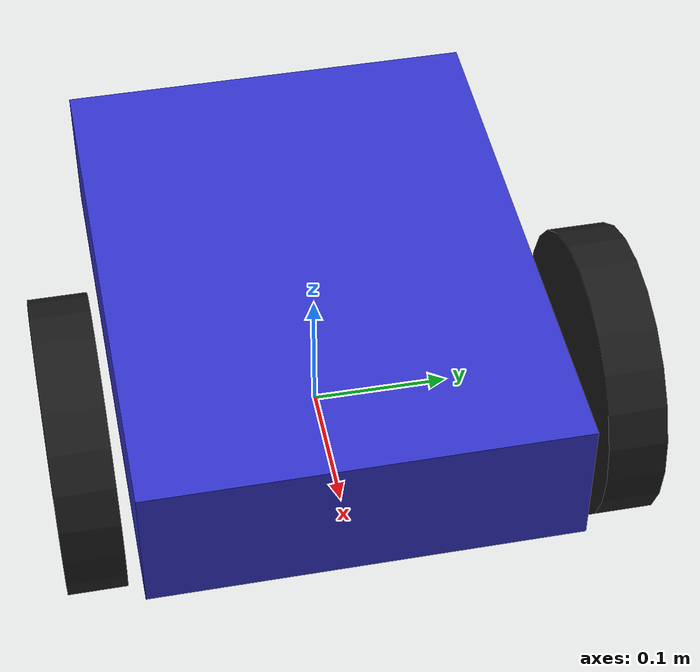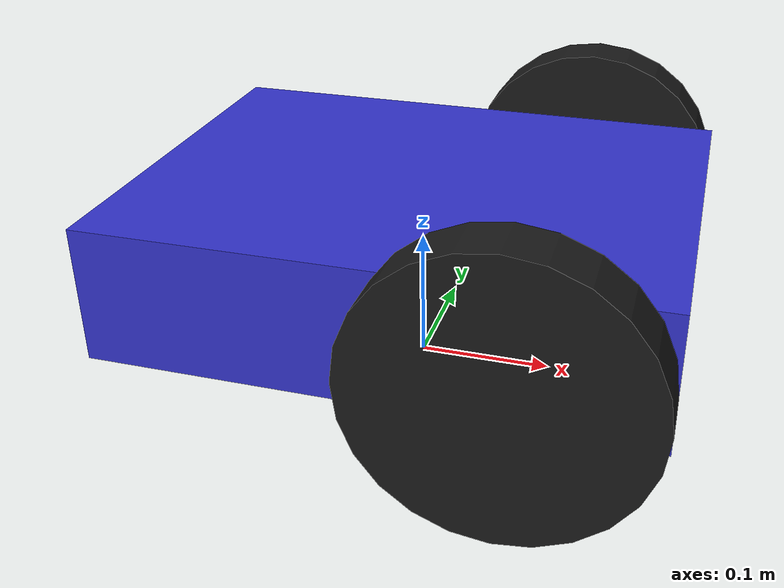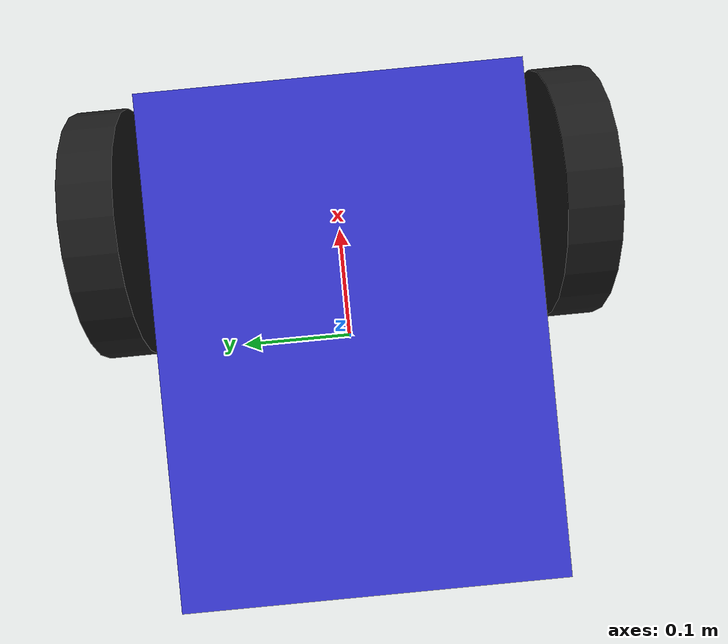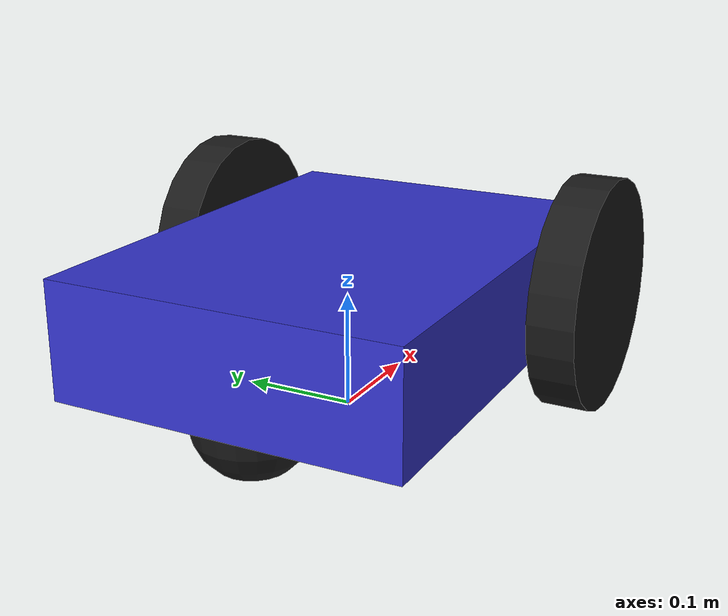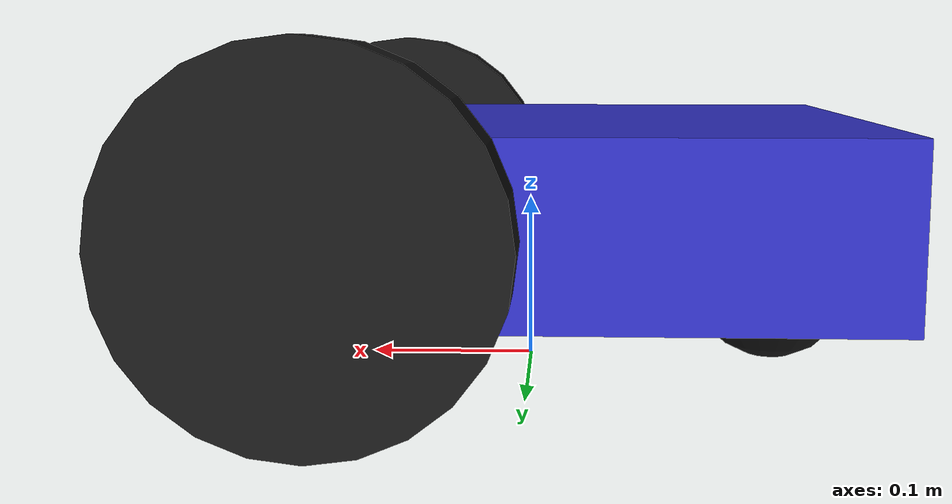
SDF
<?xml version="1.0" ?>
<sdf version="1.9">
  <model name="simple_robot">
    <pose>0 0 0.1 0 0 0</pose>

    <link name="base_link">
      <inertial>
        <mass>2.0</mass>
        <inertia>
          <ixx>0.02</ixx>
          <iyy>0.02</iyy>
          <izz>0.04</izz>
        </inertia>
      </inertial>
      <visual name="visual">
        <geometry>
          <box><size>0.4 0.3 0.1</size></box>
        </geometry>
        <material>
          <ambient>0.2 0.2 0.8 1</ambient>
          <diffuse>0.2 0.2 0.8 1</diffuse>
        </material>
      </visual>
      <collision name="collision">
        <geometry>
          <box><size>0.4 0.3 0.1</size></box>
        </geometry>
      </collision>

      <!-- Caster wheel -->
      <visual name="caster_visual">
        <pose>-0.15 0 -0.05 0 0 0</pose>
        <geometry>
          <sphere><radius>0.05</radius></sphere>
        </geometry>
        <material>
          <ambient>0.1 0.1 0.1 1</ambient>
          <diffuse>0.1 0.1 0.1 1</diffuse>
        </material>
      </visual>
      <collision name="caster_collision">
        <pose>-0.15 0 -0.05 0 0 0</pose>
        <geometry>
          <sphere><radius>0.05</radius></sphere>
        </geometry>
        <surface>
          <friction>
            <ode>
              <mu>0</mu>
              <mu2>0</mu2>
              <slip1>1.0</slip1>
              <slip2>1.0</slip2>
            </ode>
          </friction>
        </surface>
      </collision>

      <!-- Lidar Sensor -->
      <sensor name="lidar" type="gpu_lidar">
        <pose>0.1 0 0.08 0 0 0</pose>
        <topic>/scan</topic>
        <update_rate>10</update_rate>
        <ray>
          <scan>
            <horizontal>
              <samples>360</samples>
              <resolution>1</resolution>
              <min_angle>-3.14159</min_angle>
              <max_angle>3.14159</max_angle>
            </horizontal>
          </scan>
          <range>
            <min>0.1</min>
            <max>10.0</max>
            <resolution>0.01</resolution>
          </range>
        </ray>
        <always_on>1</always_on>
        <visualize>true</visualize>
      </sensor>
    </link>

    <!-- Left Wheel -->
    <link name="left_wheel">
      <pose>0.1 0.18 0 -1.570796 0 0</pose>
      <inertial>
        <mass>0.5</mass>
        <inertia>
          <ixx>0.001</ixx>
          <iyy>0.001</iyy>
          <izz>0.001</izz>
        </inertia>
      </inertial>
      <visual name="visual">
        <geometry>
          <cylinder>
            <radius>0.1</radius>
            <length>0.04</length>
          </cylinder>
        </geometry>
        <material>
          <ambient>0.1 0.1 0.1 1</ambient>
          <diffuse>0.1 0.1 0.1 1</diffuse>
        </material>
      </visual>
      <collision name="collision">
        <geometry>
          <cylinder>
            <radius>0.1</radius>
            <length>0.04</length>
          </cylinder>
        </geometry>
      </collision>
    </link>

    <!-- Right Wheel -->
    <link name="right_wheel">
      <pose>0.1 -0.18 0 -1.570796 0 0</pose>
      <inertial>
        <mass>0.5</mass>
        <inertia>
          <ixx>0.001</ixx>
          <iyy>0.001</iyy>
          <izz>0.001</izz>
        </inertia>
      </inertial>
      <visual name="visual">
        <geometry>
          <cylinder>
            <radius>0.1</radius>
            <length>0.04</length>
          </cylinder>
        </geometry>
        <material>
          <ambient>0.1 0.1 0.1 1</ambient>
          <diffuse>0.1 0.1 0.1 1</diffuse>
        </material>
      </visual>
      <collision name="collision">
        <geometry>
          <cylinder>
            <radius>0.1</radius>
            <length>0.04</length>
          </cylinder>
        </geometry>
      </collision>
    </link>

    <joint name="left_wheel_joint" type="revolute">
      <parent>base_link</parent>
      <child>left_wheel</child>
      <axis>
        <xyz>0 0 1</xyz>
      </axis>
    </joint>

    <joint name="right_wheel_joint" type="revolute">
      <parent>base_link</parent>
      <child>right_wheel</child>
      <axis>
        <xyz>0 0 1</xyz>
      </axis>
    </joint>

    <plugin
      filename="gz-sim-diff-drive-system"
      name="gz::sim::systems::DiffDrive">
      <left_joint>left_wheel_joint</left_joint>
      <right_joint>right_wheel_joint</right_joint>
      <wheel_separation>0.36</wheel_separation>
      <wheel_radius>0.1</wheel_radius>
      <odom_publish_frequency>50</odom_publish_frequency>
      <topic>/cmd_vel</topic>
      <odom_topic>/odom</odom_topic>
      <tf_topic>/tf</tf_topic>
      <frame_id>odom</frame_id>
      <child_frame_id>base_link</child_frame_id>
    </plugin>

  </model>
</sdf>
